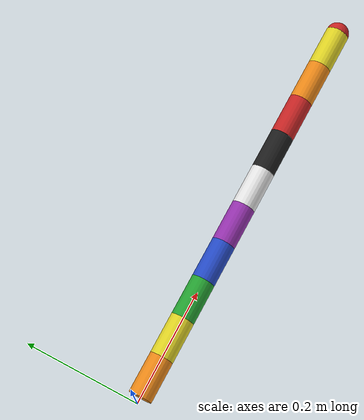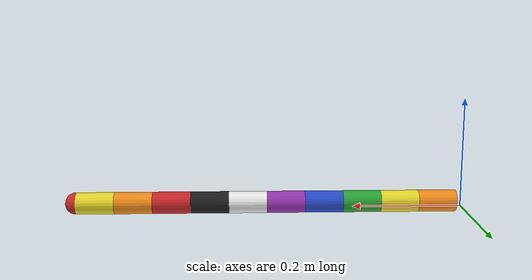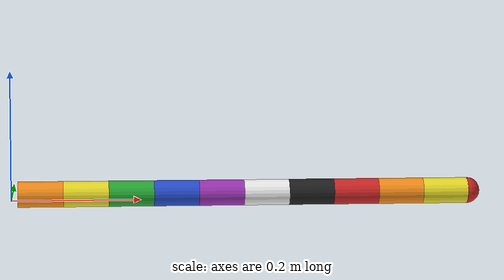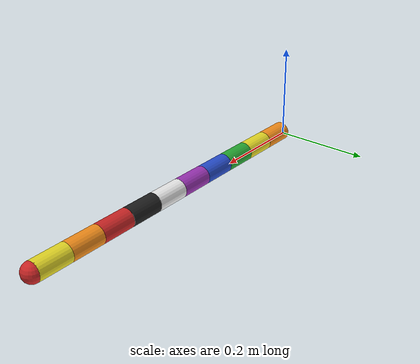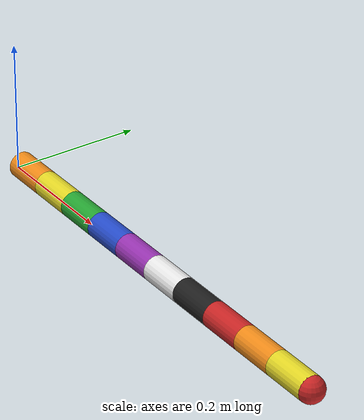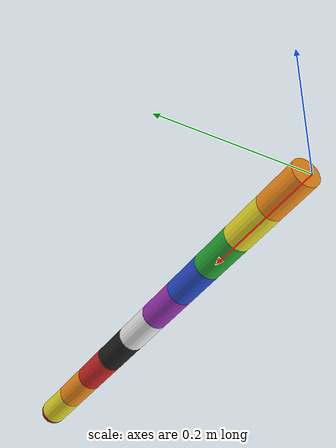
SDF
<sdf version="1.6">
    <model name="link_bot">
        <pose frame="">0 0 0.01 0 0 0</pose>

        <link name="link_1">
            <pose frame="">0.06999999999999999 0 0 3.14159 -1.57079 3.14159</pose>
            <inertial>
                <pose frame="">0.025 0 0 0 0 0</pose>
                <mass>0.001</mass>
                <inertia>
                    <ixx>5.083333333333332e-07</ixx>
                    <ixy>0</ixy>
                    <ixz>0</ixz>
                    <iyy>5.083333333333332e-07</iyy>
                    <iyz>0</iyz>
                    <izz>2.0000000000000002e-07</izz>
                </inertia>
            </inertial>
            <collision name="link_1_collision">
                <pose frame="">0 0 0.024999999999999994 0 0 0</pose>
                <geometry>
                    <box>
                        <size>0.04 0.04 0.05249999999999999</size>
                    </box>
                </geometry>
                <surface>
                    <friction>
                        <ode>
                            <mu>0.10</mu>
                            <mu2>0.10</mu2>
                        </ode>
                    </friction>
                </surface>
                <max_contacts>5</max_contacts>
            </collision>
            <visual name="link_1_visual">
                <cast_shadows>0</cast_shadows>
                <pose frame="">0 0 0.024999999999999994 0 0 0</pose>
                <geometry>
                    <cylinder>
                        <length>0.06999999999999999</length>
                        <radius>0.02</radius>
                    </cylinder>
                </geometry>
                <material>
                    <script>
                        <name>Gazebo/Orange</name>
                        <uri>file://media/materials/scripts/gazebo.material</uri>
                    </script>
                </material>
            </visual>
            <self_collide>1</self_collide>
        </link>

        <link name="link_2">
            <pose frame="">0.13999999999999999 0 0 3.14159 -1.57079 3.14159</pose>
            <inertial>
                <pose frame="">0.025 0 0 0 0 0</pose>
                <mass>0.001</mass>
                <inertia>
                    <ixx>5.083333333333332e-07</ixx>
                    <ixy>0</ixy>
                    <ixz>0</ixz>
                    <iyy>5.083333333333332e-07</iyy>
                    <iyz>0</iyz>
                    <izz>2.0000000000000002e-07</izz>
                </inertia>
            </inertial>
            <collision name="link_2_collision">
                <pose frame="">0 0 0.024999999999999994 0 0 0</pose>
                <geometry>
                    <box>
                        <size>0.04 0.04 0.05249999999999999</size>
                    </box>
                </geometry>
                <surface>
                    <friction>
                        <ode>
                            <mu>0.10</mu>
                            <mu2>0.10</mu2>
                        </ode>
                    </friction>
                </surface>
                <max_contacts>5</max_contacts>
            </collision>
            <visual name="link_2_visual">
                <cast_shadows>0</cast_shadows>
                <pose frame="">0 0 0.024999999999999994 0 0 0</pose>
                <geometry>
                    <cylinder>
                        <length>0.06999999999999999</length>
                        <radius>0.02</radius>
                    </cylinder>
                </geometry>
                <material>
                    <script>
                        <name>Gazebo/Yellow</name>
                        <uri>file://media/materials/scripts/gazebo.material</uri>
                    </script>
                </material>
            </visual>
            <self_collide>1</self_collide>
        </link>

        <link name="link_3">
            <pose frame="">0.20999999999999996 0 0 3.14159 -1.57079 3.14159</pose>
            <inertial>
                <pose frame="">0.025 0 0 0 0 0</pose>
                <mass>0.001</mass>
                <inertia>
                    <ixx>5.083333333333332e-07</ixx>
                    <ixy>0</ixy>
                    <ixz>0</ixz>
                    <iyy>5.083333333333332e-07</iyy>
                    <iyz>0</iyz>
                    <izz>2.0000000000000002e-07</izz>
                </inertia>
            </inertial>
            <collision name="link_3_collision">
                <pose frame="">0 0 0.024999999999999994 0 0 0</pose>
                <geometry>
                    <box>
                        <size>0.04 0.04 0.05249999999999999</size>
                    </box>
                </geometry>
                <surface>
                    <friction>
                        <ode>
                            <mu>0.10</mu>
                            <mu2>0.10</mu2>
                        </ode>
                    </friction>
                </surface>
                <max_contacts>5</max_contacts>
            </collision>
            <visual name="link_3_visual">
                <cast_shadows>0</cast_shadows>
                <pose frame="">0 0 0.024999999999999994 0 0 0</pose>
                <geometry>
                    <cylinder>
                        <length>0.06999999999999999</length>
                        <radius>0.02</radius>
                    </cylinder>
                </geometry>
                <material>
                    <script>
                        <name>Gazebo/Green</name>
                        <uri>file://media/materials/scripts/gazebo.material</uri>
                    </script>
                </material>
            </visual>
            <self_collide>1</self_collide>
        </link>

        <link name="link_4">
            <pose frame="">0.27999999999999997 0 0 3.14159 -1.57079 3.14159</pose>
            <inertial>
                <pose frame="">0.025 0 0 0 0 0</pose>
                <mass>0.001</mass>
                <inertia>
                    <ixx>5.083333333333332e-07</ixx>
                    <ixy>0</ixy>
                    <ixz>0</ixz>
                    <iyy>5.083333333333332e-07</iyy>
                    <iyz>0</iyz>
                    <izz>2.0000000000000002e-07</izz>
                </inertia>
            </inertial>
            <collision name="link_4_collision">
                <pose frame="">0 0 0.024999999999999994 0 0 0</pose>
                <geometry>
                    <box>
                        <size>0.04 0.04 0.05249999999999999</size>
                    </box>
                </geometry>
                <surface>
                    <friction>
                        <ode>
                            <mu>0.10</mu>
                            <mu2>0.10</mu2>
                        </ode>
                    </friction>
                </surface>
                <max_contacts>5</max_contacts>
            </collision>
            <visual name="link_4_visual">
                <cast_shadows>0</cast_shadows>
                <pose frame="">0 0 0.024999999999999994 0 0 0</pose>
                <geometry>
                    <cylinder>
                        <length>0.06999999999999999</length>
                        <radius>0.02</radius>
                    </cylinder>
                </geometry>
                <material>
                    <script>
                        <name>Gazebo/Blue</name>
                        <uri>file://media/materials/scripts/gazebo.material</uri>
                    </script>
                </material>
            </visual>
            <self_collide>1</self_collide>
        </link>

        <link name="link_5">
            <pose frame="">0.35 0 0 3.14159 -1.57079 3.14159</pose>
            <inertial>
                <pose frame="">0.025 0 0 0 0 0</pose>
                <mass>0.001</mass>
                <inertia>
                    <ixx>5.083333333333332e-07</ixx>
                    <ixy>0</ixy>
                    <ixz>0</ixz>
                    <iyy>5.083333333333332e-07</iyy>
                    <iyz>0</iyz>
                    <izz>2.0000000000000002e-07</izz>
                </inertia>
            </inertial>
            <collision name="link_5_collision">
                <pose frame="">0 0 0.024999999999999994 0 0 0</pose>
                <geometry>
                    <box>
                        <size>0.04 0.04 0.05249999999999999</size>
                    </box>
                </geometry>
                <surface>
                    <friction>
                        <ode>
                            <mu>0.10</mu>
                            <mu2>0.10</mu2>
                        </ode>
                    </friction>
                </surface>
                <max_contacts>5</max_contacts>
            </collision>
            <visual name="link_5_visual">
                <cast_shadows>0</cast_shadows>
                <pose frame="">0 0 0.024999999999999994 0 0 0</pose>
                <geometry>
                    <cylinder>
                        <length>0.06999999999999999</length>
                        <radius>0.02</radius>
                    </cylinder>
                </geometry>
                <material>
                    <script>
                        <name>Gazebo/Purple</name>
                        <uri>file://media/materials/scripts/gazebo.material</uri>
                    </script>
                </material>
            </visual>
            <self_collide>1</self_collide>
        </link>

        <link name="link_6">
            <pose frame="">0.41999999999999993 0 0 3.14159 -1.57079 3.14159</pose>
            <inertial>
                <pose frame="">0.025 0 0 0 0 0</pose>
                <mass>0.001</mass>
                <inertia>
                    <ixx>5.083333333333332e-07</ixx>
                    <ixy>0</ixy>
                    <ixz>0</ixz>
                    <iyy>5.083333333333332e-07</iyy>
                    <iyz>0</iyz>
                    <izz>2.0000000000000002e-07</izz>
                </inertia>
            </inertial>
            <collision name="link_6_collision">
                <pose frame="">0 0 0.024999999999999994 0 0 0</pose>
                <geometry>
                    <box>
                        <size>0.04 0.04 0.05249999999999999</size>
                    </box>
                </geometry>
                <surface>
                    <friction>
                        <ode>
                            <mu>0.10</mu>
                            <mu2>0.10</mu2>
                        </ode>
                    </friction>
                </surface>
                <max_contacts>5</max_contacts>
            </collision>
            <visual name="link_6_visual">
                <cast_shadows>0</cast_shadows>
                <pose frame="">0 0 0.024999999999999994 0 0 0</pose>
                <geometry>
                    <cylinder>
                        <length>0.06999999999999999</length>
                        <radius>0.02</radius>
                    </cylinder>
                </geometry>
                <material>
                    <script>
                        <name>Gazebo/White</name>
                        <uri>file://media/materials/scripts/gazebo.material</uri>
                    </script>
                </material>
            </visual>
            <self_collide>1</self_collide>
        </link>

        <link name="link_7">
            <pose frame="">0.48999999999999994 0 0 3.14159 -1.57079 3.14159</pose>
            <inertial>
                <pose frame="">0.025 0 0 0 0 0</pose>
                <mass>0.001</mass>
                <inertia>
                    <ixx>5.083333333333332e-07</ixx>
                    <ixy>0</ixy>
                    <ixz>0</ixz>
                    <iyy>5.083333333333332e-07</iyy>
                    <iyz>0</iyz>
                    <izz>2.0000000000000002e-07</izz>
                </inertia>
            </inertial>
            <collision name="link_7_collision">
                <pose frame="">0 0 0.024999999999999994 0 0 0</pose>
                <geometry>
                    <box>
                        <size>0.04 0.04 0.05249999999999999</size>
                    </box>
                </geometry>
                <surface>
                    <friction>
                        <ode>
                            <mu>0.10</mu>
                            <mu2>0.10</mu2>
                        </ode>
                    </friction>
                </surface>
                <max_contacts>5</max_contacts>
            </collision>
            <visual name="link_7_visual">
                <cast_shadows>0</cast_shadows>
                <pose frame="">0 0 0.024999999999999994 0 0 0</pose>
                <geometry>
                    <cylinder>
                        <length>0.06999999999999999</length>
                        <radius>0.02</radius>
                    </cylinder>
                </geometry>
                <material>
                    <script>
                        <name>Gazebo/Black</name>
                        <uri>file://media/materials/scripts/gazebo.material</uri>
                    </script>
                </material>
            </visual>
            <self_collide>1</self_collide>
        </link>

        <link name="link_8">
            <pose frame="">0.5599999999999999 0 0 3.14159 -1.57079 3.14159</pose>
            <inertial>
                <pose frame="">0.025 0 0 0 0 0</pose>
                <mass>0.001</mass>
                <inertia>
                    <ixx>5.083333333333332e-07</ixx>
                    <ixy>0</ixy>
                    <ixz>0</ixz>
                    <iyy>5.083333333333332e-07</iyy>
                    <iyz>0</iyz>
                    <izz>2.0000000000000002e-07</izz>
                </inertia>
            </inertial>
            <collision name="link_8_collision">
                <pose frame="">0 0 0.024999999999999994 0 0 0</pose>
                <geometry>
                    <box>
                        <size>0.04 0.04 0.05249999999999999</size>
                    </box>
                </geometry>
                <surface>
                    <friction>
                        <ode>
                            <mu>0.10</mu>
                            <mu2>0.10</mu2>
                        </ode>
                    </friction>
                </surface>
                <max_contacts>5</max_contacts>
            </collision>
            <visual name="link_8_visual">
                <cast_shadows>0</cast_shadows>
                <pose frame="">0 0 0.024999999999999994 0 0 0</pose>
                <geometry>
                    <cylinder>
                        <length>0.06999999999999999</length>
                        <radius>0.02</radius>
                    </cylinder>
                </geometry>
                <material>
                    <script>
                        <name>Gazebo/Red</name>
                        <uri>file://media/materials/scripts/gazebo.material</uri>
                    </script>
                </material>
            </visual>
            <self_collide>1</self_collide>
        </link>

        <link name="link_9">
            <pose frame="">0.6299999999999999 0 0 3.14159 -1.57079 3.14159</pose>
            <inertial>
                <pose frame="">0.025 0 0 0 0 0</pose>
                <mass>0.001</mass>
                <inertia>
                    <ixx>5.083333333333332e-07</ixx>
                    <ixy>0</ixy>
                    <ixz>0</ixz>
                    <iyy>5.083333333333332e-07</iyy>
                    <iyz>0</iyz>
                    <izz>2.0000000000000002e-07</izz>
                </inertia>
            </inertial>
            <collision name="link_9_collision">
                <pose frame="">0 0 0.024999999999999994 0 0 0</pose>
                <geometry>
                    <box>
                        <size>0.04 0.04 0.05249999999999999</size>
                    </box>
                </geometry>
                <surface>
                    <friction>
                        <ode>
                            <mu>0.10</mu>
                            <mu2>0.10</mu2>
                        </ode>
                    </friction>
                </surface>
                <max_contacts>5</max_contacts>
            </collision>
            <visual name="link_9_visual">
                <cast_shadows>0</cast_shadows>
                <pose frame="">0 0 0.024999999999999994 0 0 0</pose>
                <geometry>
                    <cylinder>
                        <length>0.06999999999999999</length>
                        <radius>0.02</radius>
                    </cylinder>
                </geometry>
                <material>
                    <script>
                        <name>Gazebo/Orange</name>
                        <uri>file://media/materials/scripts/gazebo.material</uri>
                    </script>
                </material>
            </visual>
            <self_collide>1</self_collide>
        </link>

        <link name="link_10">
            <pose frame="">0.7 0 0 3.14159 -1.57079 3.14159</pose>
            <inertial>
                <pose frame="">0.025 0 0 0 0 0</pose>
                <mass>0.001</mass>
                <inertia>
                    <ixx>5.083333333333332e-07</ixx>
                    <ixy>0</ixy>
                    <ixz>0</ixz>
                    <iyy>5.083333333333332e-07</iyy>
                    <iyz>0</iyz>
                    <izz>2.0000000000000002e-07</izz>
                </inertia>
            </inertial>
            <collision name="link_10_collision">
                <pose frame="">0 0 0.024999999999999994 0 0 0</pose>
                <geometry>
                    <box>
                        <size>0.04 0.04 0.05249999999999999</size>
                    </box>
                </geometry>
                <surface>
                    <friction>
                        <ode>
                            <mu>0.10</mu>
                            <mu2>0.10</mu2>
                        </ode>
                    </friction>
                </surface>
                <max_contacts>5</max_contacts>
            </collision>
            <visual name="link_10_visual">
                <cast_shadows>0</cast_shadows>
                <pose frame="">0 0 0.024999999999999994 0 0 0</pose>
                <geometry>
                    <cylinder>
                        <length>0.06999999999999999</length>
                        <radius>0.02</radius>
                    </cylinder>
                </geometry>
                <material>
                    <script>
                        <name>Gazebo/Yellow</name>
                        <uri>file://media/materials/scripts/gazebo.material</uri>
                    </script>
                </material>
            </visual>
            <self_collide>1</self_collide>
        </link>

        <joint name="joint_1" type="universal">
            <child>link_2</child>
            <parent>link_1</parent>
            <pose>0 0 0.05999999999999999 0 0 0</pose>
            <axis>
                <xyz>0 0 1</xyz>
                <limit>
                    <lower>-3</lower>
                    <upper>3</upper>
                    <effort>10</effort>
                    <velocity>5</velocity>
                </limit>
                <dynamics>
                    <damping>0.001</damping>
                    <friction>0</friction>
                </dynamics>
                <use_parent_model_frame>1</use_parent_model_frame>
            </axis>
            <axis2>
                <xyz>0 1 0</xyz>
                <limit>
                    <lower>-3</lower>
                    <upper>3</upper>
                    <effort>10</effort>
                    <velocity>5</velocity>
                </limit>
                <dynamics>
                    <damping>0.001</damping>
                    <friction>0</friction>
                </dynamics>
                <use_parent_model_frame>1</use_parent_model_frame>
            </axis2>
        </joint>

        <joint name="joint_2" type="universal">
            <child>link_3</child>
            <parent>link_2</parent>
            <pose>0 0 0.05999999999999999 0 0 0</pose>
            <axis>
                <xyz>0 0 1</xyz>
                <limit>
                    <lower>-3</lower>
                    <upper>3</upper>
                    <effort>10</effort>
                    <velocity>5</velocity>
                </limit>
                <dynamics>
                    <damping>0.001</damping>
                    <friction>0</friction>
                </dynamics>
                <use_parent_model_frame>1</use_parent_model_frame>
            </axis>
            <axis2>
                <xyz>0 1 0</xyz>
                <limit>
                    <lower>-3</lower>
                    <upper>3</upper>
                    <effort>10</effort>
                    <velocity>5</velocity>
                </limit>
                <dynamics>
                    <damping>0.001</damping>
                    <friction>0</friction>
                </dynamics>
                <use_parent_model_frame>1</use_parent_model_frame>
            </axis2>
        </joint>

        <joint name="joint_3" type="universal">
            <child>link_4</child>
            <parent>link_3</parent>
            <pose>0 0 0.05999999999999999 0 0 0</pose>
            <axis>
                <xyz>0 0 1</xyz>
                <limit>
                    <lower>-3</lower>
                    <upper>3</upper>
                    <effort>10</effort>
                    <velocity>5</velocity>
                </limit>
                <dynamics>
                    <damping>0.001</damping>
                    <friction>0</friction>
                </dynamics>
                <use_parent_model_frame>1</use_parent_model_frame>
            </axis>
            <axis2>
                <xyz>0 1 0</xyz>
                <limit>
                    <lower>-3</lower>
                    <upper>3</upper>
                    <effort>10</effort>
                    <velocity>5</velocity>
                </limit>
                <dynamics>
                    <damping>0.001</damping>
                    <friction>0</friction>
                </dynamics>
                <use_parent_model_frame>1</use_parent_model_frame>
            </axis2>
        </joint>

        <joint name="joint_4" type="universal">
            <child>link_5</child>
            <parent>link_4</parent>
            <pose>0 0 0.05999999999999999 0 0 0</pose>
            <axis>
                <xyz>0 0 1</xyz>
                <limit>
                    <lower>-3</lower>
                    <upper>3</upper>
                    <effort>10</effort>
                    <velocity>5</velocity>
                </limit>
                <dynamics>
                    <damping>0.001</damping>
                    <friction>0</friction>
                </dynamics>
                <use_parent_model_frame>1</use_parent_model_frame>
            </axis>
            <axis2>
                <xyz>0 1 0</xyz>
                <limit>
                    <lower>-3</lower>
                    <upper>3</upper>
                    <effort>10</effort>
                    <velocity>5</velocity>
                </limit>
                <dynamics>
                    <damping>0.001</damping>
                    <friction>0</friction>
                </dynamics>
                <use_parent_model_frame>1</use_parent_model_frame>
            </axis2>
        </joint>

        <joint name="joint_5" type="universal">
            <child>link_6</child>
            <parent>link_5</parent>
            <pose>0 0 0.05999999999999999 0 0 0</pose>
            <axis>
                <xyz>0 0 1</xyz>
                <limit>
                    <lower>-3</lower>
                    <upper>3</upper>
                    <effort>10</effort>
                    <velocity>5</velocity>
                </limit>
                <dynamics>
                    <damping>0.001</damping>
                    <friction>0</friction>
                </dynamics>
                <use_parent_model_frame>1</use_parent_model_frame>
            </axis>
            <axis2>
                <xyz>0 1 0</xyz>
                <limit>
                    <lower>-3</lower>
                    <upper>3</upper>
                    <effort>10</effort>
                    <velocity>5</velocity>
                </limit>
                <dynamics>
                    <damping>0.001</damping>
                    <friction>0</friction>
                </dynamics>
                <use_parent_model_frame>1</use_parent_model_frame>
            </axis2>
        </joint>

        <joint name="joint_6" type="universal">
            <child>link_7</child>
            <parent>link_6</parent>
            <pose>0 0 0.05999999999999999 0 0 0</pose>
            <axis>
                <xyz>0 0 1</xyz>
                <limit>
                    <lower>-3</lower>
                    <upper>3</upper>
                    <effort>10</effort>
                    <velocity>5</velocity>
                </limit>
                <dynamics>
                    <damping>0.001</damping>
                    <friction>0</friction>
                </dynamics>
                <use_parent_model_frame>1</use_parent_model_frame>
            </axis>
            <axis2>
                <xyz>0 1 0</xyz>
                <limit>
                    <lower>-3</lower>
                    <upper>3</upper>
                    <effort>10</effort>
                    <velocity>5</velocity>
                </limit>
                <dynamics>
                    <damping>0.001</damping>
                    <friction>0</friction>
                </dynamics>
                <use_parent_model_frame>1</use_parent_model_frame>
            </axis2>
        </joint>

        <joint name="joint_7" type="universal">
            <child>link_8</child>
            <parent>link_7</parent>
            <pose>0 0 0.05999999999999999 0 0 0</pose>
            <axis>
                <xyz>0 0 1</xyz>
                <limit>
                    <lower>-3</lower>
                    <upper>3</upper>
                    <effort>10</effort>
                    <velocity>5</velocity>
                </limit>
                <dynamics>
                    <damping>0.001</damping>
                    <friction>0</friction>
                </dynamics>
                <use_parent_model_frame>1</use_parent_model_frame>
            </axis>
            <axis2>
                <xyz>0 1 0</xyz>
                <limit>
                    <lower>-3</lower>
                    <upper>3</upper>
                    <effort>10</effort>
                    <velocity>5</velocity>
                </limit>
                <dynamics>
                    <damping>0.001</damping>
                    <friction>0</friction>
                </dynamics>
                <use_parent_model_frame>1</use_parent_model_frame>
            </axis2>
        </joint>

        <joint name="joint_8" type="universal">
            <child>link_9</child>
            <parent>link_8</parent>
            <pose>0 0 0.05999999999999999 0 0 0</pose>
            <axis>
                <xyz>0 0 1</xyz>
                <limit>
                    <lower>-3</lower>
                    <upper>3</upper>
                    <effort>10</effort>
                    <velocity>5</velocity>
                </limit>
                <dynamics>
                    <damping>0.001</damping>
                    <friction>0</friction>
                </dynamics>
                <use_parent_model_frame>1</use_parent_model_frame>
            </axis>
            <axis2>
                <xyz>0 1 0</xyz>
                <limit>
                    <lower>-3</lower>
                    <upper>3</upper>
                    <effort>10</effort>
                    <velocity>5</velocity>
                </limit>
                <dynamics>
                    <damping>0.001</damping>
                    <friction>0</friction>
                </dynamics>
                <use_parent_model_frame>1</use_parent_model_frame>
            </axis2>
        </joint>

        <joint name="joint_9" type="universal">
            <child>link_10</child>
            <parent>link_9</parent>
            <pose>0 0 0.05999999999999999 0 0 0</pose>
            <axis>
                <xyz>0 0 1</xyz>
                <limit>
                    <lower>-3</lower>
                    <upper>3</upper>
                    <effort>10</effort>
                    <velocity>5</velocity>
                </limit>
                <dynamics>
                    <damping>0.001</damping>
                    <friction>0</friction>
                </dynamics>
                <use_parent_model_frame>1</use_parent_model_frame>
            </axis>
            <axis2>
                <xyz>0 1 0</xyz>
                <limit>
                    <lower>-3</lower>
                    <upper>3</upper>
                    <effort>10</effort>
                    <velocity>5</velocity>
                </limit>
                <dynamics>
                    <damping>0.001</damping>
                    <friction>0</friction>
                </dynamics>
                <use_parent_model_frame>1</use_parent_model_frame>
            </axis2>
        </joint>

        <link name='head'>
            <pose frame=''>0.71 0 0 0 0 0</pose>
            <inertial>
                <pose frame=''>0 0 0 0 0 0</pose>
                <mass>0.1</mass>
                <inertia>
                    <ixx>0.0001</ixx>
                    <ixy>0</ixy>
                    <ixz>0</ixz>
                    <iyy>0.0001</iyy>
                    <iyz>0</iyz>
                    <izz>0.001</izz>
                </inertia>
            </inertial>
            <collision name='head_collision'>
                <pose frame=''>0 0 0 0 0 0</pose>
                <geometry>
                    <sphere>
                        <radius>0.02</radius>
                    </sphere>
                </geometry>
                <surface>
                    <friction>
                        <ode>
                            <mu>0.10</mu>
                            <mu2>0.10</mu2>
                        </ode>
                    </friction>
                </surface>
                <max_contacts>20</max_contacts>
            </collision>
            <visual name='head_visual'>
                <cast_shadows>0</cast_shadows>
                <pose frame=''>0 0 0 0 0 0</pose>
                <geometry>
                    <sphere>
                        <radius>0.02</radius>
                    </sphere>
                </geometry>
                <material>
                    <script>
                        <name>Gazebo/Red</name>
                        <uri>file://media/materials/scripts/gazebo.material</uri>
                    </script>
                </material>
            </visual>
            <self_collide>1</self_collide>
            <sensor name='head_contact' type='contact'>
                <contact>
                    <collision>head_collision</collision>
                    <topic>__default_topic__</topic>
                </contact>
            </sensor>
        </link>
        <joint name="head_joint" type="universal">
            <child>head</child>
            <parent>link_10</parent>
            <pose>0 0 0 0 0 0</pose>
            <axis>
                <xyz>0 0 1</xyz>
                <limit>
                    <lower>-3</lower>
                    <upper>3</upper>
                    <effort>10</effort>
                    <velocity>5</velocity>
                </limit>
                <dynamics>
                    <damping>0.01</damping>
                    <friction>0</friction>
                </dynamics>
            </axis>
            <physics>
                <ode>
                    <limit>
                        <cfm>0</cfm>
                        <erp>0.2</erp>
                    </limit>
                </ode>
            </physics>
        </joint>
        <plugin name='rope_plugin' filename='librope_plugin.so'>
            <num_links>10</num_links>
            <rope_length>0.7</rope_length>
        </plugin>
        <plugin name='position_3d_plugin' filename='libposition_3d_plugin.so'>
            <kP_pos>50</kP_pos>
            <kI_pos>0.0</kI_pos>
            <kD_pos>0.0</kD_pos>
            <kP_vel>100.0</kP_vel>
            <kI_vel>0.0</kI_vel>
            <kD_vel>0.0</kD_vel>
            <max_force>8.0</max_force>
            <max_vel>0.15</max_vel>
            <max_vel_acc>0.01</max_vel_acc>
            <link>head</link>
        </plugin>
    </model>
</sdf>
